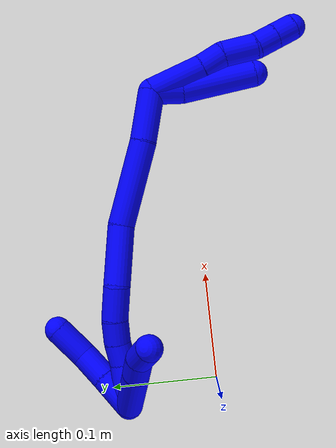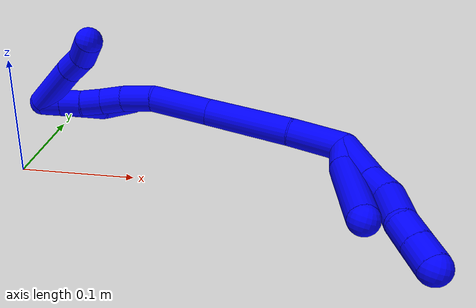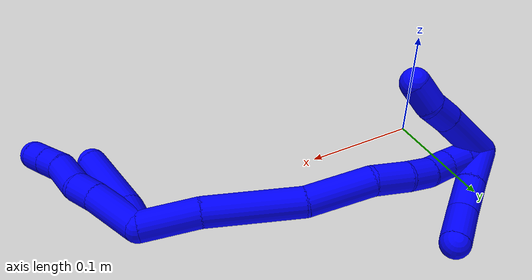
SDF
<sdf version="1.7">
 <world name="default">
  <model name="photoneo_s_sensor">
   <static>1</static>
   <pose>0 0 2 1.57079 1.57079 3.14159</pose>
   <link name="link">
    <inertial><mass>0.1</mass></inertial>
    <sensor name="sensor" type="depth">
     <update_rate>30</update_rate>
     <camera>
      <horizontal_fov>1.22</horizontal_fov>
      <image><width>1920</width><height>1200</height><format>B8G8R8</format></image>
      <clip><near>0.1</near><far>4</far></clip>
      <depth_camera><output>points</output></depth_camera>
     </camera>
     <plugin name="camera_plugin" filename="libgazebo_ros_depth_camera.so">
      <baseline>0.2</baseline>
      <alwaysOn>1</alwaysOn>
      <updateRate>0.0</updateRate>
      <cameraName>camera_ir</cameraName>
      <imageTopicName>/camera/color/image_raw</imageTopicName>
      <cameraInfoTopicName>/camera/color/camera_info</cameraInfoTopicName>
      <depthImageTopicName>/camera/depth/image_raw</depthImageTopicName>
      <depthImageCameraInfoTopicName>/camera/depth/camera_info</depthImageCameraInfoTopicName>
      <pointCloudTopicName>/camera/depth/points</pointCloudTopicName>
      <frameName>fr_optical</frameName>
      <pointCloudCutoff>0.1</pointCloudCutoff>
      <pointCloudCutoffMax>2.0</pointCloudCutoffMax>
      <distortionK1>0</distortionK1>
      <distortionK2>0</distortionK2>
      <distortionK3>0</distortionK3>
      <distortionT1>0</distortionT1>
      <distortionT2>0</distortionT2>
      <CxPrime>0</CxPrime>
      <Cx>0</Cx>
      <Cy>0</Cy>
      <focalLength>0</focalLength>
      <hackBaseline>0</hackBaseline>
     </plugin>
    </sensor>
   </link>
  </model>
  <model name="bin">
   <static>1</static>
   <link name="bottom">
    <collision name="collision-bottom">
     <pose>0 0 -0.01 0 -0 0</pose>
     <geometry><box><size>0.8 0.6 0.02</size></box></geometry>
     <surface>
      <friction><ode><mu>100</mu><mu2>100</mu2></ode></friction>
      <contact><collide_bitmask>65535</collide_bitmask></contact>
     </surface>
    </collision>
   </link>
   <link name="west_wall">
    <collision name="collision-west_wall">
     <pose>-0.41 0 0.1 0 -0 0</pose>
     <geometry><box><size>0.02 0.6 0.2</size></box></geometry>
     <surface>
      <friction><ode><mu>100</mu><mu2>100</mu2></ode></friction>
      <contact><collide_bitmask>65535</collide_bitmask></contact>
     </surface>
    </collision>
   </link>
   <link name="east_wall">
    <collision name="collision-east_wall">
     <pose>0.41 0 0.1 0 -0 0</pose>
     <geometry><box><size>0.02 0.6 0.2</size></box></geometry>
     <surface>
      <friction><ode><mu>100</mu><mu2>100</mu2></ode></friction>
      <contact><collide_bitmask>65535</collide_bitmask></contact>
     </surface>
    </collision>
   </link>
   <link name="south_wall">
    <collision name="collision-south_wall">
     <pose>0 -0.31 0.1 0 -0 0</pose>
     <geometry><box><size>0.8 0.02 0.2</size></box></geometry>
     <surface>
      <friction><ode><mu>100</mu><mu2>100</mu2></ode></friction>
      <contact><collide_bitmask>65535</collide_bitmask></contact>
     </surface>
    </collision>
   </link>
   <link name="north_wall">
    <collision name="collision-north_wall">
     <pose>0 0.31 0.1 0 -0 0</pose>
     <geometry><box><size>0.8 0.02 0.2</size></box></geometry>
     <surface>
      <friction><ode><mu>100</mu><mu2>100</mu2></ode></friction>
      <contact><collide_bitmask>65535</collide_bitmask></contact>
     </surface>
    </collision>
   </link>
  </model>
  <model name="1">
   <static>0</static>
   <link name="1">
    <collision name="collision-cylinder-e_1_2_8">
     <pose>0.003225 -0.02495 -0.007505 1.86299 0.123144 0.165469</pose>
     <geometry><cylinder><radius>0.0125</radius><length>0.052505</length></cylinder></geometry>
     <surface>
      <friction><ode><mu>1.16</mu><mu2>1.16</mu2><slip1>0</slip1><slip2>0</slip2></ode></friction>
      <contact><ode><kp>1e+06</kp><kd>1</kd><max_vel>0</max_vel><min_depth>0.001</min_depth></ode></contact>
     </surface>
    </collision>
    <visual name="visual-cylinder-e_1_2_8">
     <pose>0.003225 -0.02495 -0.007505 1.86299 0.123144 0.165469</pose>
     <geometry><cylinder><radius>0.0125</radius><length>0.052505</length></cylinder></geometry>
     <material><ambient>0 0 1 1</ambient></material>
    </visual>
    <collision name="collision-cylinder-e_2_8_9">
     <pose>0.009026 -0.061025 -0.017525 1.79309 0.22212 0.277287</pose>
     <geometry><cylinder><radius>0.0125</radius><length>0.023388</length></cylinder></geometry>
     <surface>
      <friction><ode><mu>1.16</mu><mu2>1.16</mu2><slip1>0</slip1><slip2>0</slip2></ode></friction>
      <contact><ode><kp>1e+06</kp><kd>1</kd><max_vel>0</max_vel><min_depth>0.001</min_depth></ode></contact>
     </surface>
    </collision>
    <visual name="visual-cylinder-e_2_8_9">
     <pose>0.009026 -0.061025 -0.017525 1.79309 0.22212 0.277287</pose>
     <geometry><cylinder><radius>0.0125</radius><length>0.023388</length></cylinder></geometry>
     <material><ambient>0 0 1 1</ambient></material>
    </visual>
    <collision name="collision-cylinder-e_3_9_10">
     <pose>0.010459 -0.087457 -0.025641 1.92162 -0.070033 -0.100163</pose>
     <geometry><cylinder><radius>0.0125</radius><length>0.032677</length></cylinder></geometry>
     <surface>
      <friction><ode><mu>1.16</mu><mu2>1.16</mu2><slip1>0</slip1><slip2>0</slip2></ode></friction>
      <contact><ode><kp>1e+06</kp><kd>1</kd><max_vel>0</max_vel><min_depth>0.001</min_depth></ode></contact>
     </surface>
    </collision>
    <visual name="visual-cylinder-e_3_9_10">
     <pose>0.010459 -0.087457 -0.025641 1.92162 -0.070033 -0.100163</pose>
     <geometry><cylinder><radius>0.0125</radius><length>0.032677</length></cylinder></geometry>
     <material><ambient>0 0 1 1</ambient></material>
    </visual>
    <collision name="collision-cylinder-e_4_10_11">
     <pose>0.011577 -0.112109 -0.035245 1.97541 0.218864 0.330116</pose>
     <geometry><cylinder><radius>0.0125</radius><length>0.020831</length></cylinder></geometry>
     <surface>
      <friction><ode><mu>1.16</mu><mu2>1.16</mu2><slip1>0</slip1><slip2>0</slip2></ode></friction>
      <contact><ode><kp>1e+06</kp><kd>1</kd><max_vel>0</max_vel><min_depth>0.001</min_depth></ode></contact>
     </surface>
    </collision>
    <visual name="visual-cylinder-e_4_10_11">
     <pose>0.011577 -0.112109 -0.035245 1.97541 0.218864 0.330116</pose>
     <geometry><cylinder><radius>0.0125</radius><length>0.020831</length></cylinder></geometry>
     <material><ambient>0 0 1 1</ambient></material>
    </visual>
    <collision name="collision-cylinder-e_5_11_6">
     <pose>0.016013 -0.130742 -0.043132 1.96699 0.212792 0.318172</pose>
     <geometry><cylinder><radius>0.0125</radius><length>0.020598</length></cylinder></geometry>
     <surface>
      <friction><ode><mu>1.16</mu><mu2>1.16</mu2><slip1>0</slip1><slip2>0</slip2></ode></friction>
      <contact><ode><kp>1e+06</kp><kd>1</kd><max_vel>0</max_vel><min_depth>0.001</min_depth></ode></contact>
     </surface>
    </collision>
    <visual name="visual-cylinder-e_5_11_6">
     <pose>0.016013 -0.130742 -0.043132 1.96699 0.212792 0.318172</pose>
     <geometry><cylinder><radius>0.0125</radius><length>0.020598</length></cylinder></geometry>
     <material><ambient>0 0 1 1</ambient></material>
    </visual>
    <collision name="collision-cylinder-e_1_2_12">
     <pose>-0.002894 -0.012166 -0.007379 2.11595 -0.20063 -0.353781</pose>
     <geometry><cylinder><radius>0.0125</radius><length>0.029041</length></cylinder></geometry>
     <surface>
      <friction><ode><mu>1.16</mu><mu2>1.16</mu2><slip1>0</slip1><slip2>0</slip2></ode></friction>
      <contact><ode><kp>1e+06</kp><kd>1</kd><max_vel>0</max_vel><min_depth>0.001</min_depth></ode></contact>
     </surface>
    </collision>
    <visual name="visual-cylinder-e_1_2_12">
     <pose>-0.002894 -0.012166 -0.007379 2.11595 -0.20063 -0.353781</pose>
     <geometry><cylinder><radius>0.0125</radius><length>0.029041</length></cylinder></geometry>
     <material><ambient>0 0 1 1</ambient></material>
    </visual>
    <collision name="collision-cylinder-e_2_12_5">
     <pose>-0.009142 -0.057803 -0.026041 1.89597 -0.09468 -0.131745</pose>
     <geometry><cylinder><radius>0.0125</radius><length>0.070959</length></cylinder></geometry>
     <surface>
      <friction><ode><mu>1.16</mu><mu2>1.16</mu2><slip1>0</slip1><slip2>0</slip2></ode></friction>
      <contact><ode><kp>1e+06</kp><kd>1</kd><max_vel>0</max_vel><min_depth>0.001</min_depth></ode></contact>
     </surface>
    </collision>
    <visual name="visual-cylinder-e_2_12_5">
     <pose>-0.009142 -0.057803 -0.026041 1.89597 -0.09468 -0.131745</pose>
     <geometry><cylinder><radius>0.0125</radius><length>0.070959</length></cylinder></geometry>
     <material><ambient>0 0 1 1</ambient></material>
    </visual>
    <collision name="collision-cylinder-e_1_2_13">
     <pose>-0.020964 0.012268 -0.000775 -1.63389 -1.04047 1.09579</pose>
     <geometry><cylinder><radius>0.0125</radius><length>0.048603</length></cylinder></geometry>
     <surface>
      <friction><ode><mu>1.16</mu><mu2>1.16</mu2><slip1>0</slip1><slip2>0</slip2></ode></friction>
      <contact><ode><kp>1e+06</kp><kd>1</kd><max_vel>0</max_vel><min_depth>0.001</min_depth></ode></contact>
     </surface>
    </collision>
    <visual name="visual-cylinder-e_1_2_13">
     <pose>-0.020964 0.012268 -0.000775 -1.63389 -1.04047 1.09579</pose>
     <geometry><cylinder><radius>0.0125</radius><length>0.048603</length></cylinder></geometry>
     <material><ambient>0 0 1 1</ambient></material>
    </visual>
    <collision name="collision-cylinder-e_2_13_14">
     <pose>-0.073952 0.048899 -0.004498 -1.6912 -0.916918 1.01616</pose>
     <geometry><cylinder><radius>0.0125</radius><length>0.080694</length></cylinder></geometry>
     <surface>
      <friction><ode><mu>1.16</mu><mu2>1.16</mu2><slip1>0</slip1><slip2>0</slip2></ode></friction>
      <contact><ode><kp>1e+06</kp><kd>1</kd><max_vel>0</max_vel><min_depth>0.001</min_depth></ode></contact>
     </surface>
    </collision>
    <visual name="visual-cylinder-e_2_13_14">
     <pose>-0.073952 0.048899 -0.004498 -1.6912 -0.916918 1.01616</pose>
     <geometry><cylinder><radius>0.0125</radius><length>0.080694</length></cylinder></geometry>
     <material><ambient>0 0 1 1</ambient></material>
    </visual>
    <collision name="collision-cylinder-e_3_14_15">
     <pose>-0.13126 0.085117 -0.008991 -1.70047 -1.12915 1.24976</pose>
     <geometry><cylinder><radius>0.0125</radius><length>0.055933</length></cylinder></geometry>
     <surface>
      <friction><ode><mu>1.16</mu><mu2>1.16</mu2><slip1>0</slip1><slip2>0</slip2></ode></friction>
      <contact><ode><kp>1e+06</kp><kd>1</kd><max_vel>0</max_vel><min_depth>0.001</min_depth></ode></contact>
     </surface>
    </collision>
    <visual name="visual-cylinder-e_3_14_15">
     <pose>-0.13126 0.085117 -0.008991 -1.70047 -1.12915 1.24976</pose>
     <geometry><cylinder><radius>0.0125</radius><length>0.055933</length></cylinder></geometry>
     <material><ambient>0 0 1 1</ambient></material>
    </visual>
    <collision name="collision-cylinder-e_4_15_16">
     <pose>-0.169593 0.104642 -0.014896 -2.08752 -0.976257 1.47929</pose>
     <geometry><cylinder><radius>0.0125</radius><length>0.031506</length></cylinder></geometry>
     <surface>
      <friction><ode><mu>1.16</mu><mu2>1.16</mu2><slip1>0</slip1><slip2>0</slip2></ode></friction>
      <contact><ode><kp>1e+06</kp><kd>1</kd><max_vel>0</max_vel><min_depth>0.001</min_depth></ode></contact>
     </surface>
    </collision>
    <visual name="visual-cylinder-e_4_15_16">
     <pose>-0.169593 0.104642 -0.014896 -2.08752 -0.976257 1.47929</pose>
     <geometry><cylinder><radius>0.0125</radius><length>0.031506</length></cylinder></geometry>
     <material><ambient>0 0 1 1</ambient></material>
    </visual>
    <collision name="collision-cylinder-e_5_16_17">
     <pose>-0.192129 0.116311 -0.023665 -2.40513 -1.01044 1.9234</pose>
     <geometry><cylinder><radius>0.0125</radius><length>0.022398</length></cylinder></geometry>
     <surface>
      <friction><ode><mu>1.16</mu><mu2>1.16</mu2><slip1>0</slip1><slip2>0</slip2></ode></friction>
      <contact><ode><kp>1e+06</kp><kd>1</kd><max_vel>0</max_vel><min_depth>0.001</min_depth></ode></contact>
     </surface>
    </collision>
    <visual name="visual-cylinder-e_5_16_17">
     <pose>-0.192129 0.116311 -0.023665 -2.40513 -1.01044 1.9234</pose>
     <geometry><cylinder><radius>0.0125</radius><length>0.022398</length></cylinder></geometry>
     <material><ambient>0 0 1 1</ambient></material>
    </visual>
    <collision name="collision-cylinder-e_6_17_18">
     <pose>-0.211014 0.12217 -0.031751 -2.67298 -1.15762 2.44118</pose>
     <geometry><cylinder><radius>0.0125</radius><length>0.020524</length></cylinder></geometry>
     <surface>
      <friction><ode><mu>1.16</mu><mu2>1.16</mu2><slip1>0</slip1><slip2>0</slip2></ode></friction>
      <contact><ode><kp>1e+06</kp><kd>1</kd><max_vel>0</max_vel><min_depth>0.001</min_depth></ode></contact>
     </surface>
    </collision>
    <visual name="visual-cylinder-e_6_17_18">
     <pose>-0.211014 0.12217 -0.031751 -2.67298 -1.15762 2.44118</pose>
     <geometry><cylinder><radius>0.0125</radius><length>0.020524</length></cylinder></geometry>
     <material><ambient>0 0 1 1</ambient></material>
    </visual>
    <collision name="collision-cylinder-e_7_18_19">
     <pose>-0.229741 0.126781 -0.037906 -2.3043 -1.19299 1.98141</pose>
     <geometry><cylinder><radius>0.0125</radius><length>0.020074</length></cylinder></geometry>
     <surface>
      <friction><ode><mu>1.16</mu><mu2>1.16</mu2><slip1>0</slip1><slip2>0</slip2></ode></friction>
      <contact><ode><kp>1e+06</kp><kd>1</kd><max_vel>0</max_vel><min_depth>0.001</min_depth></ode></contact>
     </surface>
    </collision>
    <visual name="visual-cylinder-e_7_18_19">
     <pose>-0.229741 0.126781 -0.037906 -2.3043 -1.19299 1.98141</pose>
     <geometry><cylinder><radius>0.0125</radius><length>0.020074</length></cylinder></geometry>
     <material><ambient>0 0 1 1</ambient></material>
    </visual>
    <collision name="collision-cylinder-e_8_19_1">
     <pose>-0.248446 0.132388 -0.042963 -2.30508 -1.18136 1.97085</pose>
     <geometry><cylinder><radius>0.0125</radius><length>0.020268</length></cylinder></geometry>
     <surface>
      <friction><ode><mu>1.16</mu><mu2>1.16</mu2><slip1>0</slip1><slip2>0</slip2></ode></friction>
      <contact><ode><kp>1e+06</kp><kd>1</kd><max_vel>0</max_vel><min_depth>0.001</min_depth></ode></contact>
     </surface>
    </collision>
    <visual name="visual-cylinder-e_8_19_1">
     <pose>-0.248446 0.132388 -0.042963 -2.30508 -1.18136 1.97085</pose>
     <geometry><cylinder><radius>0.0125</radius><length>0.020268</length></cylinder></geometry>
     <material><ambient>0 0 1 1</ambient></material>
    </visual>
    <collision name="collision-cylinder-e_1_1_20">
     <pose>-0.241592 0.141813 -0.043586 -1.28155 1.17118 -0.918597</pose>
     <geometry><cylinder><radius>0.0125</radius><length>0.035234</length></cylinder></geometry>
     <surface>
      <friction><ode><mu>1.16</mu><mu2>1.16</mu2><slip1>0</slip1><slip2>0</slip2></ode></friction>
      <contact><ode><kp>1e+06</kp><kd>1</kd><max_vel>0</max_vel><min_depth>0.001</min_depth></ode></contact>
     </surface>
    </collision>
    <visual name="visual-cylinder-e_1_1_20">
     <pose>-0.241592 0.141813 -0.043586 -1.28155 1.17118 -0.918597</pose>
     <geometry><cylinder><radius>0.0125</radius><length>0.035234</length></cylinder></geometry>
     <material><ambient>0 0 1 1</ambient></material>
    </visual>
    <collision name="collision-cylinder-e_2_20_21">
     <pose>-0.21167 0.154442 -0.040263 -1.34873 1.14488 -0.951369</pose>
     <geometry><cylinder><radius>0.0125</radius><length>0.030072</length></cylinder></geometry>
     <surface>
      <friction><ode><mu>1.16</mu><mu2>1.16</mu2><slip1>0</slip1><slip2>0</slip2></ode></friction>
      <contact><ode><kp>1e+06</kp><kd>1</kd><max_vel>0</max_vel><min_depth>0.001</min_depth></ode></contact>
     </surface>
    </collision>
    <visual name="visual-cylinder-e_2_20_21">
     <pose>-0.21167 0.154442 -0.040263 -1.34873 1.14488 -0.951369</pose>
     <geometry><cylinder><radius>0.0125</radius><length>0.030072</length></cylinder></geometry>
     <material><ambient>0 0 1 1</ambient></material>
    </visual>
    <collision name="collision-cylinder-e_3_21_4">
     <pose>-0.183098 0.166852 -0.032634 -0.792554 1.0309 -0.465499</pose>
     <geometry><cylinder><radius>0.0125</radius><length>0.034695</length></cylinder></geometry>
     <surface>
      <friction><ode><mu>1.16</mu><mu2>1.16</mu2><slip1>0</slip1><slip2>0</slip2></ode></friction>
      <contact><ode><kp>1e+06</kp><kd>1</kd><max_vel>0</max_vel><min_depth>0.001</min_depth></ode></contact>
     </surface>
    </collision>
    <visual name="visual-cylinder-e_3_21_4">
     <pose>-0.183098 0.166852 -0.032634 -0.792554 1.0309 -0.465499</pose>
     <geometry><cylinder><radius>0.0125</radius><length>0.034695</length></cylinder></geometry>
     <material><ambient>0 0 1 1</ambient></material>
    </visual>
    <collision name="collision-cylinder-e_1_1_22">
     <pose>-0.248546 0.119599 -0.025488 0.662529 0.349664 0.121354</pose>
     <geometry><cylinder><radius>0.0125</radius><length>0.054143</length></cylinder></geometry>
     <surface>
      <friction><ode><mu>1.16</mu><mu2>1.16</mu2><slip1>0</slip1><slip2>0</slip2></ode></friction>
      <contact><ode><kp>1e+06</kp><kd>1</kd><max_vel>0</max_vel><min_depth>0.001</min_depth></ode></contact>
     </surface>
    </collision>
    <visual name="visual-cylinder-e_1_1_22">
     <pose>-0.248546 0.119599 -0.025488 0.662529 0.349664 0.121354</pose>
     <geometry><cylinder><radius>0.0125</radius><length>0.054143</length></cylinder></geometry>
     <material><ambient>0 0 1 1</ambient></material>
    </visual>
    <collision name="collision-cylinder-e_2_22_23">
     <pose>-0.234861 0.097451 0.00228 0.700352 0.412098 0.152381</pose>
     <geometry><cylinder><radius>0.0125</radius><length>0.022027</length></cylinder></geometry>
     <surface>
      <friction><ode><mu>1.16</mu><mu2>1.16</mu2><slip1>0</slip1><slip2>0</slip2></ode></friction>
      <contact><ode><kp>1e+06</kp><kd>1</kd><max_vel>0</max_vel><min_depth>0.001</min_depth></ode></contact>
     </surface>
    </collision>
    <visual name="visual-cylinder-e_2_22_23">
     <pose>-0.234861 0.097451 0.00228 0.700352 0.412098 0.152381</pose>
     <geometry><cylinder><radius>0.0125</radius><length>0.022027</length></cylinder></geometry>
     <material><ambient>0 0 1 1</ambient></material>
    </visual>
    <collision name="collision-cylinder-e_3_23_3">
     <pose>-0.229368 0.082334 0.018158 0.812288 0.090877 0.039104</pose>
     <geometry><cylinder><radius>0.0125</radius><length>0.02383</length></cylinder></geometry>
     <surface>
      <friction><ode><mu>1.16</mu><mu2>1.16</mu2><slip1>0</slip1><slip2>0</slip2></ode></friction>
      <contact><ode><kp>1e+06</kp><kd>1</kd><max_vel>0</max_vel><min_depth>0.001</min_depth></ode></contact>
     </surface>
    </collision>
    <visual name="visual-cylinder-e_3_23_3">
     <pose>-0.229368 0.082334 0.018158 0.812288 0.090877 0.039104</pose>
     <geometry><cylinder><radius>0.0125</radius><length>0.02383</length></cylinder></geometry>
     <material><ambient>0 0 1 1</ambient></material>
    </visual>
    <collision name="collision-sphere-3">
     <pose>-0.228287 0.073721 0.02632 0 -0 0</pose>
     <geometry><sphere><radius>0.0125</radius></sphere></geometry>
     <surface>
      <friction><ode><mu>1.16</mu><mu2>1.16</mu2><slip1>0</slip1><slip2>0</slip2></ode></friction>
      <contact><ode><kp>1e+06</kp><kd>1</kd><max_vel>0</max_vel><min_depth>0.001</min_depth></ode></contact>
     </surface>
    </collision>
    <visual name="visual-sphere-3">
     <pose>-0.228287 0.073721 0.02632 0 -0 0</pose>
     <geometry><sphere><radius>0.0125</radius></sphere></geometry>
     <material><ambient>0 0 1 1</ambient></material>
    </visual>
    <collision name="collision-sphere-23">
     <pose>-0.23045 0.090948 0.009996 0 -0 0</pose>
     <geometry><sphere><radius>0.0125</radius></sphere></geometry>
     <surface>
      <friction><ode><mu>1.16</mu><mu2>1.16</mu2><slip1>0</slip1><slip2>0</slip2></ode></friction>
      <contact><ode><kp>1e+06</kp><kd>1</kd><max_vel>0</max_vel><min_depth>0.001</min_depth></ode></contact>
     </surface>
    </collision>
    <visual name="visual-sphere-23">
     <pose>-0.23045 0.090948 0.009996 0 -0 0</pose>
     <geometry><sphere><radius>0.0125</radius></sphere></geometry>
     <material><ambient>0 0 1 1</ambient></material>
    </visual>
    <collision name="collision-sphere-22">
     <pose>-0.239272 0.103955 -0.005436 0 -0 0</pose>
     <geometry><sphere><radius>0.0125</radius></sphere></geometry>
     <surface>
      <friction><ode><mu>1.16</mu><mu2>1.16</mu2><slip1>0</slip1><slip2>0</slip2></ode></friction>
      <contact><ode><kp>1e+06</kp><kd>1</kd><max_vel>0</max_vel><min_depth>0.001</min_depth></ode></contact>
     </surface>
    </collision>
    <visual name="visual-sphere-22">
     <pose>-0.239272 0.103955 -0.005436 0 -0 0</pose>
     <geometry><sphere><radius>0.0125</radius></sphere></geometry>
     <material><ambient>0 0 1 1</ambient></material>
    </visual>
    <collision name="collision-sphere-4">
     <pose>-0.168218 0.173202 -0.026374 0 -0 0</pose>
     <geometry><sphere><radius>0.0125</radius></sphere></geometry>
     <surface>
      <friction><ode><mu>1.16</mu><mu2>1.16</mu2><slip1>0</slip1><slip2>0</slip2></ode></friction>
      <contact><ode><kp>1e+06</kp><kd>1</kd><max_vel>0</max_vel><min_depth>0.001</min_depth></ode></contact>
     </surface>
    </collision>
    <visual name="visual-sphere-4">
     <pose>-0.168218 0.173202 -0.026374 0 -0 0</pose>
     <geometry><sphere><radius>0.0125</radius></sphere></geometry>
     <material><ambient>0 0 1 1</ambient></material>
    </visual>
    <collision name="collision-sphere-21">
     <pose>-0.197978 0.160501 -0.038894 0 -0 0</pose>
     <geometry><sphere><radius>0.0125</radius></sphere></geometry>
     <surface>
      <friction><ode><mu>1.16</mu><mu2>1.16</mu2><slip1>0</slip1><slip2>0</slip2></ode></friction>
      <contact><ode><kp>1e+06</kp><kd>1</kd><max_vel>0</max_vel><min_depth>0.001</min_depth></ode></contact>
     </surface>
    </collision>
    <visual name="visual-sphere-21">
     <pose>-0.197978 0.160501 -0.038894 0 -0 0</pose>
     <geometry><sphere><radius>0.0125</radius></sphere></geometry>
     <material><ambient>0 0 1 1</ambient></material>
    </visual>
    <collision name="collision-sphere-20">
     <pose>-0.225363 0.148382 -0.041631 0 -0 0</pose>
     <geometry><sphere><radius>0.0125</radius></sphere></geometry>
     <surface>
      <friction><ode><mu>1.16</mu><mu2>1.16</mu2><slip1>0</slip1><slip2>0</slip2></ode></friction>
      <contact><ode><kp>1e+06</kp><kd>1</kd><max_vel>0</max_vel><min_depth>0.001</min_depth></ode></contact>
     </surface>
    </collision>
    <visual name="visual-sphere-20">
     <pose>-0.225363 0.148382 -0.041631 0 -0 0</pose>
     <geometry><sphere><radius>0.0125</radius></sphere></geometry>
     <material><ambient>0 0 1 1</ambient></material>
    </visual>
    <collision name="collision-sphere-6">
     <pose>0.018188 -0.140029 -0.047017 0 -0 0</pose>
     <geometry><sphere><radius>0.0125</radius></sphere></geometry>
     <surface>
      <friction><ode><mu>1.16</mu><mu2>1.16</mu2><slip1>0</slip1><slip2>0</slip2></ode></friction>
      <contact><ode><kp>1e+06</kp><kd>1</kd><max_vel>0</max_vel><min_depth>0.001</min_depth></ode></contact>
     </surface>
    </collision>
    <visual name="visual-sphere-6">
     <pose>0.018188 -0.140029 -0.047017 0 -0 0</pose>
     <geometry><sphere><radius>0.0125</radius></sphere></geometry>
     <material><ambient>0 0 1 1</ambient></material>
    </visual>
    <collision name="collision-sphere-11">
     <pose>0.013838 -0.121455 -0.039247 0 -0 0</pose>
     <geometry><sphere><radius>0.0125</radius></sphere></geometry>
     <surface>
      <friction><ode><mu>1.16</mu><mu2>1.16</mu2><slip1>0</slip1><slip2>0</slip2></ode></friction>
      <contact><ode><kp>1e+06</kp><kd>1</kd><max_vel>0</max_vel><min_depth>0.001</min_depth></ode></contact>
     </surface>
    </collision>
    <visual name="visual-sphere-11">
     <pose>0.013838 -0.121455 -0.039247 0 -0 0</pose>
     <geometry><sphere><radius>0.0125</radius></sphere></geometry>
     <material><ambient>0 0 1 1</ambient></material>
    </visual>
    <collision name="collision-sphere-10">
     <pose>0.009315 -0.102763 -0.031243 0 -0 0</pose>
     <geometry><sphere><radius>0.0125</radius></sphere></geometry>
     <surface>
      <friction><ode><mu>1.16</mu><mu2>1.16</mu2><slip1>0</slip1><slip2>0</slip2></ode></friction>
      <contact><ode><kp>1e+06</kp><kd>1</kd><max_vel>0</max_vel><min_depth>0.001</min_depth></ode></contact>
     </surface>
    </collision>
    <visual name="visual-sphere-10">
     <pose>0.009315 -0.102763 -0.031243 0 -0 0</pose>
     <geometry><sphere><radius>0.0125</radius></sphere></geometry>
     <material><ambient>0 0 1 1</ambient></material>
    </visual>
    <collision name="collision-sphere-9">
     <pose>0.011602 -0.072152 -0.02004 0 -0 0</pose>
     <geometry><sphere><radius>0.0125</radius></sphere></geometry>
     <surface>
      <friction><ode><mu>1.16</mu><mu2>1.16</mu2><slip1>0</slip1><slip2>0</slip2></ode></friction>
      <contact><ode><kp>1e+06</kp><kd>1</kd><max_vel>0</max_vel><min_depth>0.001</min_depth></ode></contact>
     </surface>
    </collision>
    <visual name="visual-sphere-9">
     <pose>0.011602 -0.072152 -0.02004 0 -0 0</pose>
     <geometry><sphere><radius>0.0125</radius></sphere></geometry>
     <material><ambient>0 0 1 1</ambient></material>
    </visual>
    <collision name="collision-sphere-2">
     <geometry><sphere><radius>0.0125</radius></sphere></geometry>
     <surface>
      <friction><ode><mu>1.16</mu><mu2>1.16</mu2><slip1>0</slip1><slip2>0</slip2></ode></friction>
      <contact><ode><kp>1e+06</kp><kd>1</kd><max_vel>0</max_vel><min_depth>0.001</min_depth></ode></contact>
     </surface>
    </collision>
    <visual name="visual-sphere-2">
     <geometry><sphere><radius>0.0125</radius></sphere></geometry>
     <material><ambient>0 0 1 1</ambient></material>
    </visual>
    <collision name="collision-sphere-19">
     <pose>-0.23907 0.129532 -0.040385 0 -0 0</pose>
     <geometry><sphere><radius>0.0125</radius></sphere></geometry>
     <surface>
      <friction><ode><mu>1.16</mu><mu2>1.16</mu2><slip1>0</slip1><slip2>0</slip2></ode></friction>
      <contact><ode><kp>1e+06</kp><kd>1</kd><max_vel>0</max_vel><min_depth>0.001</min_depth></ode></contact>
     </surface>
    </collision>
    <visual name="visual-sphere-19">
     <pose>-0.23907 0.129532 -0.040385 0 -0 0</pose>
     <geometry><sphere><radius>0.0125</radius></sphere></geometry>
     <material><ambient>0 0 1 1</ambient></material>
    </visual>
    <collision name="collision-sphere-8">
     <pose>0.006449 -0.049899 -0.01501 0 -0 0</pose>
     <geometry><sphere><radius>0.0125</radius></sphere></geometry>
     <surface>
      <friction><ode><mu>1.16</mu><mu2>1.16</mu2><slip1>0</slip1><slip2>0</slip2></ode></friction>
      <contact><ode><kp>1e+06</kp><kd>1</kd><max_vel>0</max_vel><min_depth>0.001</min_depth></ode></contact>
     </surface>
    </collision>
    <visual name="visual-sphere-8">
     <pose>0.006449 -0.049899 -0.01501 0 -0 0</pose>
     <geometry><sphere><radius>0.0125</radius></sphere></geometry>
     <material><ambient>0 0 1 1</ambient></material>
    </visual>
    <collision name="collision-sphere-12">
     <pose>-0.005787 -0.024333 -0.014757 0 -0 0</pose>
     <geometry><sphere><radius>0.0125</radius></sphere></geometry>
     <surface>
      <friction><ode><mu>1.16</mu><mu2>1.16</mu2><slip1>0</slip1><slip2>0</slip2></ode></friction>
      <contact><ode><kp>1e+06</kp><kd>1</kd><max_vel>0</max_vel><min_depth>0.001</min_depth></ode></contact>
     </surface>
    </collision>
    <visual name="visual-sphere-12">
     <pose>-0.005787 -0.024333 -0.014757 0 -0 0</pose>
     <geometry><sphere><radius>0.0125</radius></sphere></geometry>
     <material><ambient>0 0 1 1</ambient></material>
    </visual>
    <collision name="collision-sphere-5">
     <pose>-0.012496 -0.091273 -0.037325 0 -0 0</pose>
     <geometry><sphere><radius>0.0125</radius></sphere></geometry>
     <surface>
      <friction><ode><mu>1.16</mu><mu2>1.16</mu2><slip1>0</slip1><slip2>0</slip2></ode></friction>
      <contact><ode><kp>1e+06</kp><kd>1</kd><max_vel>0</max_vel><min_depth>0.001</min_depth></ode></contact>
     </surface>
    </collision>
    <visual name="visual-sphere-5">
     <pose>-0.012496 -0.091273 -0.037325 0 -0 0</pose>
     <geometry><sphere><radius>0.0125</radius></sphere></geometry>
     <material><ambient>0 0 1 1</ambient></material>
    </visual>
    <collision name="collision-sphere-13">
     <pose>-0.041927 0.024535 -0.00155 0 -0 0</pose>
     <geometry><sphere><radius>0.0125</radius></sphere></geometry>
     <surface>
      <friction><ode><mu>1.16</mu><mu2>1.16</mu2><slip1>0</slip1><slip2>0</slip2></ode></friction>
      <contact><ode><kp>1e+06</kp><kd>1</kd><max_vel>0</max_vel><min_depth>0.001</min_depth></ode></contact>
     </surface>
    </collision>
    <visual name="visual-sphere-13">
     <pose>-0.041927 0.024535 -0.00155 0 -0 0</pose>
     <geometry><sphere><radius>0.0125</radius></sphere></geometry>
     <material><ambient>0 0 1 1</ambient></material>
    </visual>
    <collision name="collision-sphere-14">
     <pose>-0.105977 0.073263 -0.007446 0 -0 0</pose>
     <geometry><sphere><radius>0.0125</radius></sphere></geometry>
     <surface>
      <friction><ode><mu>1.16</mu><mu2>1.16</mu2><slip1>0</slip1><slip2>0</slip2></ode></friction>
      <contact><ode><kp>1e+06</kp><kd>1</kd><max_vel>0</max_vel><min_depth>0.001</min_depth></ode></contact>
     </surface>
    </collision>
    <visual name="visual-sphere-14">
     <pose>-0.105977 0.073263 -0.007446 0 -0 0</pose>
     <geometry><sphere><radius>0.0125</radius></sphere></geometry>
     <material><ambient>0 0 1 1</ambient></material>
    </visual>
    <collision name="collision-sphere-15">
     <pose>-0.156543 0.09697 -0.010537 0 -0 0</pose>
     <geometry><sphere><radius>0.0125</radius></sphere></geometry>
     <surface>
      <friction><ode><mu>1.16</mu><mu2>1.16</mu2><slip1>0</slip1><slip2>0</slip2></ode></friction>
      <contact><ode><kp>1e+06</kp><kd>1</kd><max_vel>0</max_vel><min_depth>0.001</min_depth></ode></contact>
     </surface>
    </collision>
    <visual name="visual-sphere-15">
     <pose>-0.156543 0.09697 -0.010537 0 -0 0</pose>
     <geometry><sphere><radius>0.0125</radius></sphere></geometry>
     <material><ambient>0 0 1 1</ambient></material>
    </visual>
    <collision name="collision-sphere-16">
     <pose>-0.182643 0.112313 -0.019255 0 -0 0</pose>
     <geometry><sphere><radius>0.0125</radius></sphere></geometry>
     <surface>
      <friction><ode><mu>1.16</mu><mu2>1.16</mu2><slip1>0</slip1><slip2>0</slip2></ode></friction>
      <contact><ode><kp>1e+06</kp><kd>1</kd><max_vel>0</max_vel><min_depth>0.001</min_depth></ode></contact>
     </surface>
    </collision>
    <visual name="visual-sphere-16">
     <pose>-0.182643 0.112313 -0.019255 0 -0 0</pose>
     <geometry><sphere><radius>0.0125</radius></sphere></geometry>
     <material><ambient>0 0 1 1</ambient></material>
    </visual>
    <collision name="collision-sphere-17">
     <pose>-0.201615 0.120309 -0.028075 0 -0 0</pose>
     <geometry><sphere><radius>0.0125</radius></sphere></geometry>
     <surface>
      <friction><ode><mu>1.16</mu><mu2>1.16</mu2><slip1>0</slip1><slip2>0</slip2></ode></friction>
      <contact><ode><kp>1e+06</kp><kd>1</kd><max_vel>0</max_vel><min_depth>0.001</min_depth></ode></contact>
     </surface>
    </collision>
    <visual name="visual-sphere-17">
     <pose>-0.201615 0.120309 -0.028075 0 -0 0</pose>
     <geometry><sphere><radius>0.0125</radius></sphere></geometry>
     <material><ambient>0 0 1 1</ambient></material>
    </visual>
    <collision name="collision-sphere-18">
     <pose>-0.220412 0.124031 -0.035427 0 -0 0</pose>
     <geometry><sphere><radius>0.0125</radius></sphere></geometry>
     <surface>
      <friction><ode><mu>1.16</mu><mu2>1.16</mu2><slip1>0</slip1><slip2>0</slip2></ode></friction>
      <contact><ode><kp>1e+06</kp><kd>1</kd><max_vel>0</max_vel><min_depth>0.001</min_depth></ode></contact>
     </surface>
    </collision>
    <visual name="visual-sphere-18">
     <pose>-0.220412 0.124031 -0.035427 0 -0 0</pose>
     <geometry><sphere><radius>0.0125</radius></sphere></geometry>
     <material><ambient>0 0 1 1</ambient></material>
    </visual>
    <collision name="collision-sphere-1">
     <pose>-0.257821 0.135244 -0.045541 0 -0 0</pose>
     <geometry><sphere><radius>0.0125</radius></sphere></geometry>
     <surface>
      <friction><ode><mu>1.16</mu><mu2>1.16</mu2><slip1>0</slip1><slip2>0</slip2></ode></friction>
      <contact><ode><kp>1e+06</kp><kd>1</kd><max_vel>0</max_vel><min_depth>0.001</min_depth></ode></contact>
     </surface>
    </collision>
    <visual name="visual-sphere-1">
     <pose>-0.257821 0.135244 -0.045541 0 -0 0</pose>
     <geometry><sphere><radius>0.0125</radius></sphere></geometry>
     <material><ambient>0 0 1 1</ambient></material>
    </visual>
    <inertial>
     <pose>-0.110291 0.045168 -0.019051 0 -0 0</pose>
     <mass>0.75</mass>
     <inertia><ixx>0.000125</ixx><ixy>0</ixy><ixz>0</ixz><iyy>9.5e-05</iyy><iyz>0</iyz><izz>6.8e-05</izz></inertia>
    </inertial>
   </link>
   <pose>0.277358 0.033065 0.027206 -0.256691 0.305221 0.241782</pose>
  </model>
 </world>
</sdf>
